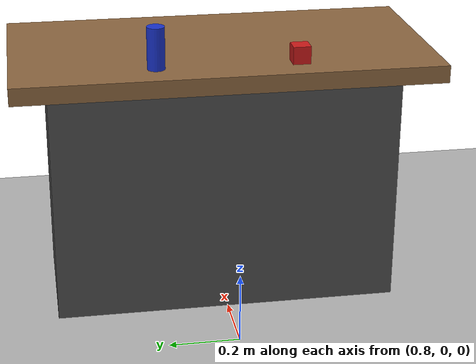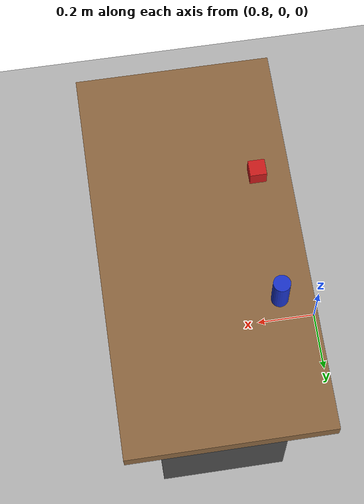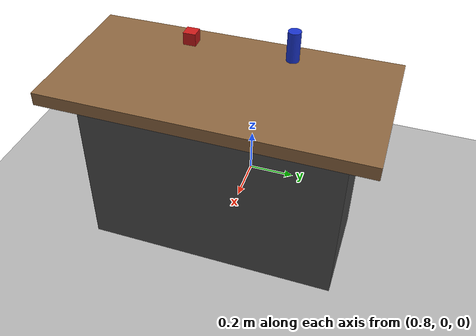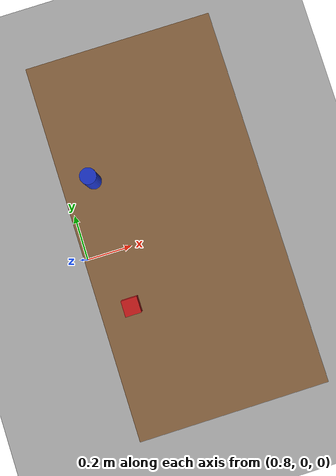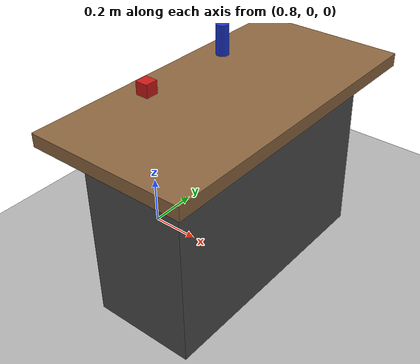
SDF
<?xml version="1.0"?>
<sdf version="1.9">
  <world name="rby1_world">
    <physics name="1ms" type="dart">
      <max_step_size>0.001</max_step_size>
      <real_time_factor>1.0</real_time_factor>
    </physics>

    <plugin filename="gz-sim-physics-system" name="gz::sim::systems::Physics"/>
    <plugin filename="gz-sim-user-commands-system" name="gz::sim::systems::UserCommands"/>
    <plugin filename="gz-sim-scene-broadcaster-system" name="gz::sim::systems::SceneBroadcaster"/>
    <plugin filename="gz-sim-sensors-system" name="gz::sim::systems::Sensors">
      <render_engine>ogre2</render_engine>
    </plugin>
    <plugin filename="gz-sim-imu-system" name="gz::sim::systems::Imu"/>

    <gravity>0 0 -9.81</gravity>
    <scene>
      <ambient>0.6 0.6 0.6 1</ambient>
      <background>0.75 0.8 0.85 1</background>
      <shadows>true</shadows>
    </scene>

    <light type="directional" name="sun">
      <cast_shadows>true</cast_shadows>
      <pose>0 0 10 0 0 0</pose>
      <diffuse>0.9 0.9 0.9 1</diffuse>
      <specular>0.2 0.2 0.2 1</specular>
      <direction>-0.5 0.2 -0.9</direction>
    </light>

    <model name="ground_plane">
      <static>true</static>
      <link name="link">
        <collision name="collision">
          <geometry><plane><normal>0 0 1</normal><size>100 100</size></plane></geometry>
          <surface><friction><ode><mu>1.0</mu><mu2>1.0</mu2></ode></friction></surface>
        </collision>
        <visual name="visual">
          <geometry><plane><normal>0 0 1</normal><size>100 100</size></plane></geometry>
          <material>
            <ambient>0.7 0.7 0.7 1</ambient>
            <diffuse>0.7 0.7 0.7 1</diffuse>
          </material>
        </visual>
      </link>
    </model>

    <!-- Work table 1.2 m in front of the robot, top at 0.75 m -->
    <model name="table">
      <static>true</static>
      <pose>1.2 0 0 0 0 0</pose>
      <link name="link">
        <collision name="top_collision">
          <pose>0 0 0.725 0 0 0</pose>
          <geometry><box><size>0.6 1.2 0.05</size></box></geometry>
        </collision>
        <visual name="top_visual">
          <pose>0 0 0.725 0 0 0</pose>
          <geometry><box><size>0.6 1.2 0.05</size></box></geometry>
          <material><ambient>0.55 0.4 0.25 1</ambient><diffuse>0.55 0.4 0.25 1</diffuse></material>
        </visual>
        <visual name="leg_visual">
          <pose>0 0 0.35 0 0 0</pose>
          <geometry><box><size>0.4 1.0 0.7</size></box></geometry>
          <material><ambient>0.3 0.3 0.3 1</ambient><diffuse>0.3 0.3 0.3 1</diffuse></material>
        </visual>
        <collision name="leg_collision">
          <pose>0 0 0.35 0 0 0</pose>
          <geometry><box><size>0.4 1.0 0.7</size></box></geometry>
        </collision>
      </link>
    </model>

    <model name="red_cube">
      <pose>1.0 -0.2 0.775 0 0 0</pose>
      <link name="link">
        <inertial><mass>0.1</mass>
          <inertia><ixx>4.2e-5</ixx><iyy>4.2e-5</iyy><izz>4.2e-5</izz></inertia>
        </inertial>
        <collision name="collision">
          <geometry><box><size>0.05 0.05 0.05</size></box></geometry>
          <surface><friction><ode><mu>1.0</mu><mu2>1.0</mu2></ode></friction></surface>
        </collision>
        <visual name="visual">
          <geometry><box><size>0.05 0.05 0.05</size></box></geometry>
          <material><ambient>0.8 0.1 0.1 1</ambient><diffuse>0.8 0.1 0.1 1</diffuse></material>
        </visual>
      </link>
    </model>

    <model name="blue_cylinder">
      <pose>1.0 0.2 0.81 0 0 0</pose>
      <link name="link">
        <inertial><mass>0.15</mass>
          <inertia><ixx>1.0e-4</ixx><iyy>1.0e-4</iyy><izz>4.7e-5</izz></inertia>
        </inertial>
        <collision name="collision">
          <geometry><cylinder><radius>0.025</radius><length>0.12</length></cylinder></geometry>
          <surface><friction><ode><mu>1.0</mu><mu2>1.0</mu2></ode></friction></surface>
        </collision>
        <visual name="visual">
          <geometry><cylinder><radius>0.025</radius><length>0.12</length></cylinder></geometry>
          <material><ambient>0.1 0.2 0.8 1</ambient><diffuse>0.1 0.2 0.8 1</diffuse></material>
        </visual>
      </link>
    </model>
  </world>
</sdf>
